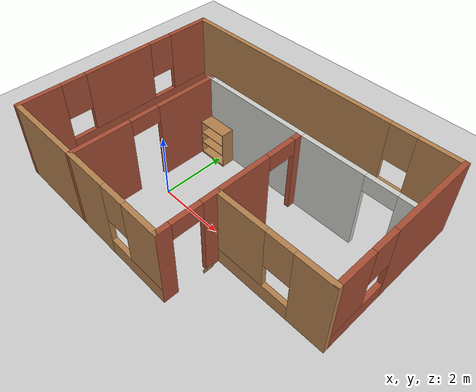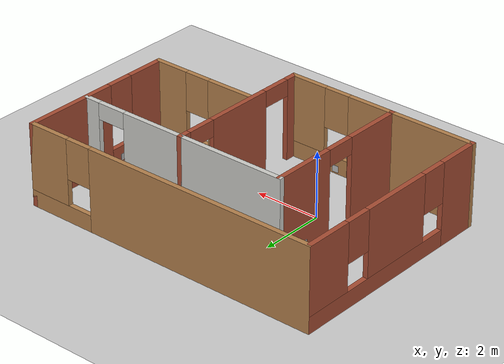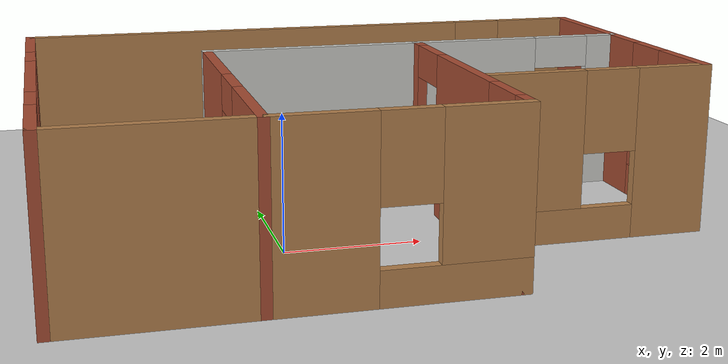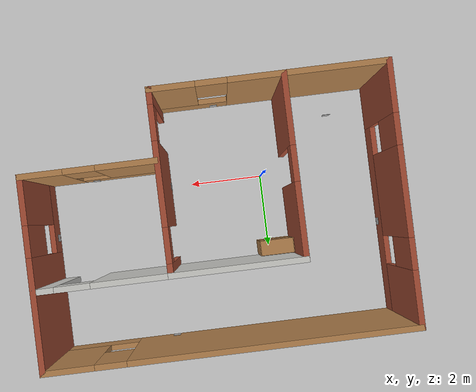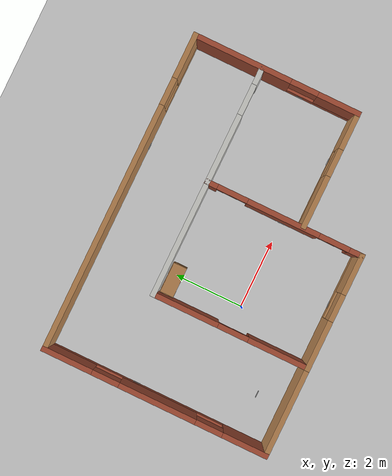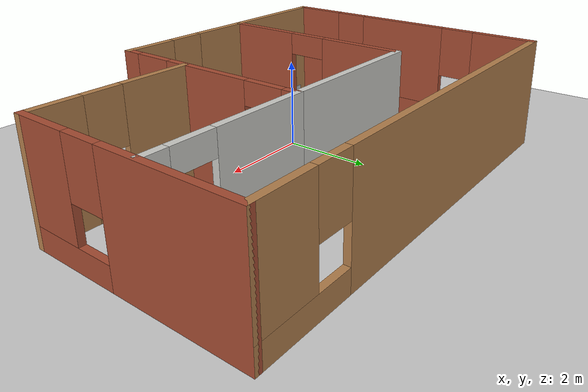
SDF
<sdf version="1.7">
 <world name="default">
  <model name="ground_plane">
   <static>1</static>
   <link name="link">
    <collision name="collision">
     <geometry><plane><normal>0 0 1</normal><size>100 100</size></plane></geometry>
     <surface><friction><ode><mu>100</mu><mu2>50</mu2></ode></friction></surface>
    </collision>
    <visual name="visual">
     <cast_shadows>0</cast_shadows>
     <geometry><plane><normal>0 0 1</normal><size>100 100</size></plane></geometry>
     <material>
      <script><uri>file://media/materials/scripts/gazebo.material</uri><name>Gazebo/Grey</name></script>
     </material>
    </visual>
   </link>
  </model>
  <model name="simple_building">
   <pose>1.395 1.04 0 0 -0 0</pose>
   <link name="Wall_0">
    <pose>-0.4 -3.3 0 0 -0 0</pose>
    <visual name="Wall_0_Visual_0">
     <pose>-1.0108 0 1.25 0 -0 0</pose>
     <geometry><box><size>1.4784 0.15 2.5</size></box></geometry>
     <material>
      <script><uri>file://media/materials/scripts/gazebo.material</uri><name>Gazebo/Wood</name></script>
      <ambient>1 1 1 1</ambient>
     </material>
     <meta><layer>0</layer></meta>
    </visual>
    <collision name="Wall_0_Collision_0">
     <geometry><box><size>1.4784 0.15 2.5</size></box></geometry>
     <pose>-1.0108 0 1.25 0 -0 0</pose>
    </collision>
    <visual name="Wall_0_Visual_1">
     <pose>0.739199 0 0.25 0 -0 0</pose>
     <geometry><box><size>2.0216 0.15 0.5</size></box></geometry>
     <material>
      <script><uri>file://media/materials/scripts/gazebo.material</uri><name>Gazebo/Wood</name></script>
      <ambient>1 1 1 1</ambient>
     </material>
     <meta><layer>0</layer></meta>
    </visual>
    <collision name="Wall_0_Collision_1">
     <geometry><box><size>2.0216 0.15 0.5</size></box></geometry>
     <pose>0.739199 0 0.25 0 -0 0</pose>
    </collision>
    <visual name="Wall_0_Visual_2">
     <pose>1.1392 0 1.5 0 -0 0</pose>
     <geometry><box><size>1.2216 0.15 2</size></box></geometry>
     <material>
      <script><uri>file://media/materials/scripts/gazebo.material</uri><name>Gazebo/Wood</name></script>
      <ambient>1 1 1 1</ambient>
     </material>
     <meta><layer>0</layer></meta>
    </visual>
    <collision name="Wall_0_Collision_2">
     <geometry><box><size>1.2216 0.15 2</size></box></geometry>
     <pose>1.1392 0 1.5 0 -0 0</pose>
    </collision>
    <visual name="Wall_0_Visual_3">
     <pose>0.128399 0 1.9 0 -0 0</pose>
     <geometry><box><size>0.8 0.15 1.2</size></box></geometry>
     <material>
      <script><uri>file://media/materials/scripts/gazebo.material</uri><name>Gazebo/Wood</name></script>
      <ambient>1 1 1 1</ambient>
     </material>
     <meta><layer>0</layer></meta>
    </visual>
    <collision name="Wall_0_Collision_3">
     <geometry><box><size>0.8 0.15 1.2</size></box></geometry>
     <pose>0.128399 0 1.9 0 -0 0</pose>
    </collision>
   </link>
   <link name="Wall_13">
    <pose>-4.675 0 0 0 -0 1.5708</pose>
    <visual name="Wall_13_Visual_0">
     <pose>-2.69026 0 1.25 0 -0 0</pose>
     <geometry><box><size>1.36949 0.15 2.5</size></box></geometry>
     <material>
      <script><uri>file://media/materials/scripts/gazebo.material</uri><name>Gazebo/Bricks</name></script>
      <ambient>1 1 1 1</ambient>
     </material>
     <meta><layer>0</layer></meta>
    </visual>
    <collision name="Wall_13_Collision_0">
     <geometry><box><size>1.36949 0.15 2.5</size></box></geometry>
     <pose>-2.69026 0 1.25 0 -0 0</pose>
    </collision>
    <visual name="Wall_13_Visual_1">
     <pose>0.684742 0 0.25 0 -0 0</pose>
     <geometry><box><size>5.38051 0.15 0.5</size></box></geometry>
     <material>
      <script><uri>file://media/materials/scripts/gazebo.material</uri><name>Gazebo/Bricks</name></script>
      <ambient>1 1 1 1</ambient>
     </material>
     <meta><layer>0</layer></meta>
    </visual>
    <collision name="Wall_13_Collision_1">
     <geometry><box><size>5.38051 0.15 0.5</size></box></geometry>
     <pose>0.684742 0 0.25 0 -0 0</pose>
    </collision>
    <visual name="Wall_13_Visual_2">
     <pose>-0.062704 0 1.5 0 -0 0</pose>
     <geometry><box><size>2.28562 0.15 2</size></box></geometry>
     <material>
      <script><uri>file://media/materials/scripts/gazebo.material</uri><name>Gazebo/Bricks</name></script>
      <ambient>1 1 1 1</ambient>
     </material>
     <meta><layer>0</layer></meta>
    </visual>
    <collision name="Wall_13_Collision_2">
     <geometry><box><size>2.28562 0.15 2</size></box></geometry>
     <pose>-0.062704 0 1.5 0 -0 0</pose>
    </collision>
    <visual name="Wall_13_Visual_3">
     <pose>2.62755 0 1.5 0 -0 0</pose>
     <geometry><box><size>1.49489 0.15 2</size></box></geometry>
     <material>
      <script><uri>file://media/materials/scripts/gazebo.material</uri><name>Gazebo/Bricks</name></script>
      <ambient>1 1 1 1</ambient>
     </material>
     <meta><layer>0</layer></meta>
    </visual>
    <collision name="Wall_13_Collision_3">
     <geometry><box><size>1.49489 0.15 2</size></box></geometry>
     <pose>2.62755 0 1.5 0 -0 0</pose>
    </collision>
    <visual name="Wall_13_Visual_4">
     <pose>-1.60552 0 1.9 0 -0 0</pose>
     <geometry><box><size>0.8 0.15 1.2</size></box></geometry>
     <material>
      <script><uri>file://media/materials/scripts/gazebo.material</uri><name>Gazebo/Bricks</name></script>
      <ambient>1 1 1 1</ambient>
     </material>
     <meta><layer>0</layer></meta>
    </visual>
    <collision name="Wall_13_Collision_4">
     <geometry><box><size>0.8 0.15 1.2</size></box></geometry>
     <pose>-1.60552 0 1.9 0 -0 0</pose>
    </collision>
    <visual name="Wall_13_Visual_5">
     <pose>1.48011 0 1.9 0 -0 0</pose>
     <geometry><box><size>0.8 0.15 1.2</size></box></geometry>
     <material>
      <script><uri>file://media/materials/scripts/gazebo.material</uri><name>Gazebo/Bricks</name></script>
      <ambient>1 1 1 1</ambient>
     </material>
     <meta><layer>0</layer></meta>
    </visual>
    <collision name="Wall_13_Collision_5">
     <geometry><box><size>0.8 0.15 1.2</size></box></geometry>
     <pose>1.48011 0 1.9 0 -0 0</pose>
    </collision>
   </link>
   <link name="Wall_14">
    <pose>0 3.3 0 0 -0 0</pose>
    <visual name="Wall_14_Visual_0">
     <pose>-1.07489 0 1.25 0 -0 0</pose>
     <geometry><box><size>7.35022 0.15 2.5</size></box></geometry>
     <material>
      <script><uri>file://media/materials/scripts/gazebo.material</uri><name>Gazebo/Wood</name></script>
      <ambient>1 1 1 1</ambient>
     </material>
     <meta><layer>0</layer></meta>
    </visual>
    <collision name="Wall_14_Collision_0">
     <geometry><box><size>7.35022 0.15 2.5</size></box></geometry>
     <pose>-1.07489 0 1.25 0 -0 0</pose>
    </collision>
    <visual name="Wall_14_Visual_1">
     <pose>3.67511 0 0.25 0 -0 0</pose>
     <geometry><box><size>2.14978 0.15 0.5</size></box></geometry>
     <material>
      <script><uri>file://media/materials/scripts/gazebo.material</uri><name>Gazebo/Wood</name></script>
      <ambient>1 1 1 1</ambient>
     </material>
     <meta><layer>0</layer></meta>
    </visual>
    <collision name="Wall_14_Collision_1">
     <geometry><box><size>2.14978 0.15 0.5</size></box></geometry>
     <pose>3.67511 0 0.25 0 -0 0</pose>
    </collision>
    <visual name="Wall_14_Visual_2">
     <pose>4.07511 0 1.5 0 -0 0</pose>
     <geometry><box><size>1.34978 0.15 2</size></box></geometry>
     <material>
      <script><uri>file://media/materials/scripts/gazebo.material</uri><name>Gazebo/Wood</name></script>
      <ambient>1 1 1 1</ambient>
     </material>
     <meta><layer>0</layer></meta>
    </visual>
    <collision name="Wall_14_Collision_2">
     <geometry><box><size>1.34978 0.15 2</size></box></geometry>
     <pose>4.07511 0 1.5 0 -0 0</pose>
    </collision>
    <visual name="Wall_14_Visual_3">
     <pose>3.00022 0 1.9 0 -0 0</pose>
     <geometry><box><size>0.8 0.15 1.2</size></box></geometry>
     <material>
      <script><uri>file://media/materials/scripts/gazebo.material</uri><name>Gazebo/Wood</name></script>
      <ambient>1 1 1 1</ambient>
     </material>
     <meta><layer>0</layer></meta>
    </visual>
    <collision name="Wall_14_Collision_3">
     <geometry><box><size>0.8 0.15 1.2</size></box></geometry>
     <pose>3.00022 0 1.9 0 -0 0</pose>
    </collision>
   </link>
   <link name="Wall_15">
    <pose>4.675 0.875 0 0 -0 -1.5708</pose>
    <visual name="Wall_15_Visual_0">
     <pose>-1.03435 0 1.25 0 -0 0</pose>
     <geometry><box><size>2.9313 0.15 2.5</size></box></geometry>
     <material>
      <script><uri>file://media/materials/scripts/gazebo.material</uri><name>Gazebo/Bricks</name></script>
      <ambient>1 1 1 1</ambient>
     </material>
     <meta><layer>0</layer></meta>
    </visual>
    <collision name="Wall_15_Collision_0">
     <geometry><box><size>2.9313 0.15 2.5</size></box></geometry>
     <pose>-1.03435 0 1.25 0 -0 0</pose>
    </collision>
    <visual name="Wall_15_Visual_1">
     <pose>1.46565 0 0.25 0 -0 0</pose>
     <geometry><box><size>2.0687 0.15 0.5</size></box></geometry>
     <material>
      <script><uri>file://media/materials/scripts/gazebo.material</uri><name>Gazebo/Bricks</name></script>
      <ambient>1 1 1 1</ambient>
     </material>
     <meta><layer>0</layer></meta>
    </visual>
    <collision name="Wall_15_Collision_1">
     <geometry><box><size>2.0687 0.15 0.5</size></box></geometry>
     <pose>1.46565 0 0.25 0 -0 0</pose>
    </collision>
    <visual name="Wall_15_Visual_2">
     <pose>1.86565 0 1.5 0 -0 0</pose>
     <geometry><box><size>1.2687 0.15 2</size></box></geometry>
     <material>
      <script><uri>file://media/materials/scripts/gazebo.material</uri><name>Gazebo/Bricks</name></script>
      <ambient>1 1 1 1</ambient>
     </material>
     <meta><layer>0</layer></meta>
    </visual>
    <collision name="Wall_15_Collision_2">
     <geometry><box><size>1.2687 0.15 2</size></box></geometry>
     <pose>1.86565 0 1.5 0 -0 0</pose>
    </collision>
    <visual name="Wall_15_Visual_3">
     <pose>0.831303 0 1.9 0 -0 0</pose>
     <geometry><box><size>0.8 0.15 1.2</size></box></geometry>
     <material>
      <script><uri>file://media/materials/scripts/gazebo.material</uri><name>Gazebo/Bricks</name></script>
      <ambient>1 1 1 1</ambient>
     </material>
     <meta><layer>0</layer></meta>
    </visual>
    <collision name="Wall_15_Collision_3">
     <geometry><box><size>0.8 0.15 1.2</size></box></geometry>
     <pose>0.831303 0 1.9 0 -0 0</pose>
    </collision>
   </link>
   <link name="Wall_18">
    <pose>3 -1.55 0 0 -0 3.14159</pose>
    <visual name="Wall_18_Visual_0">
     <pose>-1.18151 0 1.25 0 -0 0</pose>
     <geometry><box><size>1.13698 0.15 2.5</size></box></geometry>
     <material>
      <script><uri>file://media/materials/scripts/gazebo.material</uri><name>Gazebo/Wood</name></script>
      <ambient>0.435294 0.796078 0.67451 1</ambient>
     </material>
     <meta><layer>0</layer></meta>
    </visual>
    <collision name="Wall_18_Collision_0">
     <geometry><box><size>1.13698 0.15 2.5</size></box></geometry>
     <pose>-1.18151 0 1.25 0 -0 0</pose>
    </collision>
    <visual name="Wall_18_Visual_1">
     <pose>0.568488 0 0.25 0 -0 0</pose>
     <geometry><box><size>2.36302 0.15 0.5</size></box></geometry>
     <material>
      <script><uri>file://media/materials/scripts/gazebo.material</uri><name>Gazebo/Wood</name></script>
      <ambient>0.435294 0.796078 0.67451 1</ambient>
     </material>
     <meta><layer>0</layer></meta>
    </visual>
    <collision name="Wall_18_Collision_1">
     <geometry><box><size>2.36302 0.15 0.5</size></box></geometry>
     <pose>0.568488 0 0.25 0 -0 0</pose>
    </collision>
    <visual name="Wall_18_Visual_2">
     <pose>0.968488 0 1.5 0 -0 0</pose>
     <geometry><box><size>1.56303 0.15 2</size></box></geometry>
     <material>
      <script><uri>file://media/materials/scripts/gazebo.material</uri><name>Gazebo/Wood</name></script>
      <ambient>0.435294 0.796078 0.67451 1</ambient>
     </material>
     <meta><layer>0</layer></meta>
    </visual>
    <collision name="Wall_18_Collision_2">
     <geometry><box><size>1.56303 0.15 2</size></box></geometry>
     <pose>0.968488 0 1.5 0 -0 0</pose>
    </collision>
    <visual name="Wall_18_Visual_3">
     <pose>-0.213025 0 1.9 0 -0 0</pose>
     <geometry><box><size>0.8 0.15 1.2</size></box></geometry>
     <material>
      <script><uri>file://media/materials/scripts/gazebo.material</uri><name>Gazebo/Wood</name></script>
      <ambient>0.435294 0.796078 0.67451 1</ambient>
     </material>
     <meta><layer>0</layer></meta>
    </visual>
    <collision name="Wall_18_Collision_3">
     <geometry><box><size>0.8 0.15 1.2</size></box></geometry>
     <pose>-0.213025 0 1.9 0 -0 0</pose>
    </collision>
   </link>
   <link name="Wall_20">
    <pose>2.95 1.3 0 0 -0 0</pose>
    <visual name="Wall_20_Visual_0">
     <pose>-0.715786 0 1.25 0 -0 0</pose>
     <geometry><box><size>2.06843 0.15 2.5</size></box></geometry>
     <material>
      <script><uri>file://media/materials/scripts/gazebo.material</uri><name>Gazebo/CeilingTiled</name></script>
      <ambient>1 1 1 1</ambient>
     </material>
     <meta><layer>0</layer></meta>
    </visual>
    <collision name="Wall_20_Collision_0">
     <geometry><box><size>2.06843 0.15 2.5</size></box></geometry>
     <pose>-0.715786 0 1.25 0 -0 0</pose>
    </collision>
    <visual name="Wall_20_Visual_1">
     <pose>1.48421 0 1.25 0 -0 0</pose>
     <geometry><box><size>0.531571 0.15 2.5</size></box></geometry>
     <material>
      <script><uri>file://media/materials/scripts/gazebo.material</uri><name>Gazebo/CeilingTiled</name></script>
      <ambient>1 1 1 1</ambient>
     </material>
     <meta><layer>0</layer></meta>
    </visual>
    <collision name="Wall_20_Collision_1">
     <geometry><box><size>0.531571 0.15 2.5</size></box></geometry>
     <pose>1.48421 0 1.25 0 -0 0</pose>
    </collision>
    <visual name="Wall_20_Visual_2">
     <pose>0.768429 0 2.25 0 -0 0</pose>
     <geometry><box><size>0.9 0.15 0.5</size></box></geometry>
     <material>
      <script><uri>file://media/materials/scripts/gazebo.material</uri><name>Gazebo/CeilingTiled</name></script>
      <ambient>1 1 1 1</ambient>
     </material>
     <meta><layer>0</layer></meta>
    </visual>
    <collision name="Wall_20_Collision_2">
     <geometry><box><size>0.9 0.15 0.5</size></box></geometry>
     <pose>0.768429 0 2.25 0 -0 0</pose>
    </collision>
   </link>
   <link name="Wall_5">
    <pose>1.275 -1 0 0 -0 1.5708</pose>
    <visual name="Wall_5_Visual_0">
     <pose>-2.15416 0 1.25 0 -0 0</pose>
     <geometry><box><size>0.441678 0.15 2.5</size></box></geometry>
     <material>
      <script><uri>file://media/materials/scripts/gazebo.material</uri><name>Gazebo/Bricks</name></script>
      <ambient>1 1 1 1</ambient>
     </material>
     <meta><layer>0</layer></meta>
    </visual>
    <collision name="Wall_5_Collision_0">
     <geometry><box><size>0.441678 0.15 2.5</size></box></geometry>
     <pose>-2.15416 0 1.25 0 -0 0</pose>
    </collision>
    <visual name="Wall_5_Visual_1">
     <pose>0.032889 0 1.25 0 -0 0</pose>
     <geometry><box><size>2.13242 0.15 2.5</size></box></geometry>
     <material>
      <script><uri>file://media/materials/scripts/gazebo.material</uri><name>Gazebo/Bricks</name></script>
      <ambient>1 1 1 1</ambient>
     </material>
     <meta><layer>0</layer></meta>
    </visual>
    <collision name="Wall_5_Collision_1">
     <geometry><box><size>2.13242 0.15 2.5</size></box></geometry>
     <pose>0.032889 0 1.25 0 -0 0</pose>
    </collision>
    <visual name="Wall_5_Visual_2">
     <pose>2.18705 0 1.25 0 -0 0</pose>
     <geometry><box><size>0.375899 0.15 2.5</size></box></geometry>
     <material>
      <script><uri>file://media/materials/scripts/gazebo.material</uri><name>Gazebo/Bricks</name></script>
      <ambient>1 1 1 1</ambient>
     </material>
     <meta><layer>0</layer></meta>
    </visual>
    <collision name="Wall_5_Collision_2">
     <geometry><box><size>0.375899 0.15 2.5</size></box></geometry>
     <pose>2.18705 0 1.25 0 -0 0</pose>
    </collision>
    <visual name="Wall_5_Visual_3">
     <pose>-1.48332 0 2.25 0 -0 0</pose>
     <geometry><box><size>0.9 0.15 0.5</size></box></geometry>
     <material>
      <script><uri>file://media/materials/scripts/gazebo.material</uri><name>Gazebo/Bricks</name></script>
      <ambient>1 1 1 1</ambient>
     </material>
     <meta><layer>0</layer></meta>
    </visual>
    <collision name="Wall_5_Collision_3">
     <geometry><box><size>0.9 0.15 0.5</size></box></geometry>
     <pose>-1.48332 0 2.25 0 -0 0</pose>
    </collision>
    <visual name="Wall_5_Visual_4">
     <pose>1.5491 0 2.25 0 -0 0</pose>
     <geometry><box><size>0.9 0.15 0.5</size></box></geometry>
     <material>
      <script><uri>file://media/materials/scripts/gazebo.material</uri><name>Gazebo/Bricks</name></script>
      <ambient>1 1 1 1</ambient>
     </material>
     <meta><layer>0</layer></meta>
    </visual>
    <collision name="Wall_5_Collision_4">
     <geometry><box><size>0.9 0.15 0.5</size></box></geometry>
     <pose>1.5491 0 2.25 0 -0 0</pose>
    </collision>
   </link>
   <link name="Wall_7">
    <collision name="Wall_7_Collision">
     <geometry><box><size>3.5 0.15 2.5</size></box></geometry>
     <pose>0 0 1.25 0 -0 0</pose>
    </collision>
    <visual name="Wall_7_Visual">
     <pose>0 0 1.25 0 -0 0</pose>
     <geometry><box><size>3.5 0.15 2.5</size></box></geometry>
     <material>
      <script><uri>file://media/materials/scripts/gazebo.material</uri><name>Gazebo/CeilingTiled</name></script>
      <ambient>1 1 1 1</ambient>
     </material>
     <meta><layer>0</layer></meta>
    </visual>
    <pose>-0.4 1.3 0 0 -0 3.14159</pose>
   </link>
   <link name="Wall_8">
    <pose>-2.075 -1 0 0 -0 -1.5708</pose>
    <visual name="Wall_8_Visual_0">
     <pose>-1.37574 0 1.25 0 -0 0</pose>
     <geometry><box><size>1.99851 0.15 2.5</size></box></geometry>
     <material>
      <script><uri>file://media/materials/scripts/gazebo.material</uri><name>Gazebo/Bricks</name></script>
      <ambient>1 1 1 1</ambient>
     </material>
     <meta><layer>0</layer></meta>
    </visual>
    <collision name="Wall_8_Collision_0">
     <geometry><box><size>1.99851 0.15 2.5</size></box></geometry>
     <pose>-1.37574 0 1.25 0 -0 0</pose>
    </collision>
    <visual name="Wall_8_Visual_1">
     <pose>1.44926 0 1.25 0 -0 0</pose>
     <geometry><box><size>1.85149 0.15 2.5</size></box></geometry>
     <material>
      <script><uri>file://media/materials/scripts/gazebo.material</uri><name>Gazebo/Bricks</name></script>
      <ambient>1 1 1 1</ambient>
     </material>
     <meta><layer>0</layer></meta>
    </visual>
    <collision name="Wall_8_Collision_1">
     <geometry><box><size>1.85149 0.15 2.5</size></box></geometry>
     <pose>1.44926 0 1.25 0 -0 0</pose>
    </collision>
    <visual name="Wall_8_Visual_2">
     <pose>0.073511 0 2.25 0 -0 0</pose>
     <geometry><box><size>0.9 0.15 0.5</size></box></geometry>
     <material>
      <script><uri>file://media/materials/scripts/gazebo.material</uri><name>Gazebo/Bricks</name></script>
      <ambient>1 1 1 1</ambient>
     </material>
     <meta><layer>0</layer></meta>
    </visual>
    <collision name="Wall_8_Collision_2">
     <geometry><box><size>0.9 0.15 0.5</size></box></geometry>
     <pose>0.073511 0 2.25 0 -0 0</pose>
    </collision>
   </link>
   <link name="Wall_9">
    <collision name="Wall_9_Collision">
     <geometry><box><size>2.75 0.15 2.5</size></box></geometry>
     <pose>0 0 1.25 0 -0 0</pose>
    </collision>
    <visual name="Wall_9_Visual">
     <pose>0 0 1.25 0 -0 0</pose>
     <geometry><box><size>2.75 0.15 2.5</size></box></geometry>
     <material>
      <script><uri>file://media/materials/scripts/gazebo.material</uri><name>Gazebo/Wood</name></script>
      <ambient>1 1 1 1</ambient>
     </material>
     <meta><layer>0</layer></meta>
    </visual>
    <pose>-3.375 -3.3 0 0 -0 3.14159</pose>
   </link>
   <static>1</static>
  </model>
  <model name="bookshelf">
   <static>1</static>
   <link name="link">
    <inertial><mass>1</mass></inertial>
    <collision name="back">
     <pose>0 0.005 0.6 0 -0 0</pose>
     <geometry><box><size>0.9 0.01 1.2</size></box></geometry>
    </collision>
    <visual name="visual1">
     <pose>0 0.005 0.6 0 -0 0</pose>
     <geometry><box><size>0.9 0.01 1.2</size></box></geometry>
     <material>
      <script><uri>file://media/materials/scripts/gazebo.material</uri><name>Gazebo/Wood</name></script>
     </material>
    </visual>
    <collision name="left_side">
     <pose>0.45 -0.195 0.6 0 -0 0</pose>
     <geometry><box><size>0.02 0.4 1.2</size></box></geometry>
    </collision>
    <visual name="visual2">
     <pose>0.45 -0.195 0.6 0 -0 0</pose>
     <geometry><box><size>0.02 0.4 1.2</size></box></geometry>
     <material>
      <script><uri>file://media/materials/scripts/gazebo.material</uri><name>Gazebo/Wood</name></script>
     </material>
    </visual>
    <collision name="right_side">
     <pose>-0.45 -0.195 0.6 0 -0 0</pose>
     <geometry><box><size>0.02 0.4 1.2</size></box></geometry>
    </collision>
    <visual name="visual3">
     <pose>-0.45 -0.195 0.6 0 -0 0</pose>
     <geometry><box><size>0.02 0.4 1.2</size></box></geometry>
     <material>
      <script><uri>file://media/materials/scripts/gazebo.material</uri><name>Gazebo/Wood</name></script>
     </material>
    </visual>
    <collision name="bottom">
     <pose>0 -0.195 0.03 0 -0 0</pose>
     <geometry><box><size>0.88 0.4 0.06</size></box></geometry>
    </collision>
    <visual name="visual4">
     <pose>0 -0.195 0.03 0 -0 0</pose>
     <geometry><box><size>0.88 0.4 0.06</size></box></geometry>
     <material>
      <script><uri>file://media/materials/scripts/gazebo.material</uri><name>Gazebo/Wood</name></script>
     </material>
    </visual>
    <collision name="top">
     <pose>0 -0.195 1.19 0 -0 0</pose>
     <geometry><box><size>0.88 0.4 0.02</size></box></geometry>
    </collision>
    <visual name="visual5">
     <pose>0 -0.195 1.19 0 -0 0</pose>
     <geometry><box><size>0.88 0.4 0.02</size></box></geometry>
     <material>
      <script><uri>file://media/materials/scripts/gazebo.material</uri><name>Gazebo/Wood</name></script>
     </material>
    </visual>
    <collision name="low_shelf">
     <pose>0 -0.195 0.43 0 -0 0</pose>
     <geometry><box><size>0.88 0.4 0.02</size></box></geometry>
    </collision>
    <visual name="visual6">
     <pose>0 -0.195 0.43 0 -0 0</pose>
     <geometry><box><size>0.88 0.4 0.02</size></box></geometry>
     <material>
      <script><uri>file://media/materials/scripts/gazebo.material</uri><name>Gazebo/Wood</name></script>
     </material>
    </visual>
    <collision name="high_shelf">
     <pose>0 -0.195 0.8 0 -0 0</pose>
     <geometry><box><size>0.88 0.4 0.02</size></box></geometry>
    </collision>
    <visual name="visual7">
     <pose>0 -0.195 0.8 0 -0 0</pose>
     <geometry><box><size>0.88 0.4 0.02</size></box></geometry>
     <material>
      <script><uri>file://media/materials/scripts/gazebo.material</uri><name>Gazebo/Wood</name></script>
     </material>
    </visual>
   </link>
   <pose>-0.131129 2.22267 0 0 -0 0</pose>
  </model>
  <model name="wooden_board">
   <link name="base">
    <pose>0 0 0.00523 0 -0 0</pose>
    <inertial>
     <mass>0.2765</mass>
     <inertia>
      <ixx>0.0025148</ixx>
      <ixy>0</ixy>
      <ixz>0</ixz>
      <iyy>0.00024037</iyy>
      <iyz>0</iyz>
      <izz>0.00275013</izz>
     </inertia>
    </inertial>
    <collision name="collision">
     <geometry><box><size>0.1016 0.3302 0.01046</size></box></geometry>
     <surface>
      <contact>
       <poissons_ratio>0.347</poissons_ratio>
       <elastic_modulus>8.8e+09</elastic_modulus>
       <ode><kp>100000</kp><kd>100</kd><max_vel>100</max_vel><min_depth>0.001</min_depth></ode>
      </contact>
      <friction>
       <torsional>
        <coefficient>1</coefficient>
        <use_patch_radius>0</use_patch_radius>
        <surface_radius>0.01</surface_radius>
       </torsional>
      </friction>
     </surface>
    </collision>
    <visual name="visual">
     <geometry><box><size>0.1016 0.3302 0.01046</size></box></geometry>
     <material>
      <script><uri>file://media/materials/scripts/gazebo.material</uri><name>Gazebo/Wood</name></script>
     </material>
    </visual>
    <visual name="tee_nut_1">
     <pose>0 -0.116 0 0 -0 0</pose>
     <geometry><cylinder><radius>0.00635</radius><length>0.0105646</length></cylinder></geometry>
     <material>
      <script><uri>file://media/materials/scripts/gazebo.material</uri><name>Gazebo/Grey</name></script>
     </material>
    </visual>
    <visual name="tee_nut_2">
     <pose>0 -0.038 0 0 -0 0</pose>
     <geometry><cylinder><radius>0.00635</radius><length>0.0105646</length></cylinder></geometry>
     <material>
      <script><uri>file://media/materials/scripts/gazebo.material</uri><name>Gazebo/Grey</name></script>
     </material>
    </visual>
    <visual name="tee_nut_3">
     <pose>0 0.038 0 0 -0 0</pose>
     <geometry><cylinder><radius>0.00635</radius><length>0.0105646</length></cylinder></geometry>
     <material>
      <script><uri>file://media/materials/scripts/gazebo.material</uri><name>Gazebo/Grey</name></script>
     </material>
    </visual>
    <visual name="tee_nut_4">
     <pose>0 0.116 0 0 -0 0</pose>
     <geometry><cylinder><radius>0.00635</radius><length>0.0105646</length></cylinder></geometry>
     <material>
      <script><uri>file://media/materials/scripts/gazebo.material</uri><name>Gazebo/Grey</name></script>
     </material>
    </visual>
   </link>
   <pose>2.76633 -0.94401 0.050813 -3.14159 -1.32889 3.14153</pose>
  </model>
  <model name="Apriltag36_11_00000">
   <link name="main">
    <visual name="main_Visual">
     <geometry><box><size>0.2 0.2 0.01</size></box></geometry>
     <material>
      <script>
       <uri>model://Apriltag36_11_00000/materials/scripts</uri>
       <uri>model://Apriltag36_11_00000/materials/textures</uri>
       <name>Apriltag36_11_00000</name>
      </script>
     </material>
    </visual>
   </link>
   <static>1</static>
   <pose>2.59062 0 0.15 -3.14159 -1.57079 -3.14159</pose>
  </model>
  <model name="Apriltag36_11_00001">
   <link name="main">
    <visual name="main_Visual">
     <geometry><box><size>0.2 0.2 0.01</size></box></geometry>
     <material>
      <script>
       <uri>model://Apriltag36_11_00001/materials/scripts</uri>
       <uri>model://Apriltag36_11_00001/materials/textures</uri>
       <name>Apriltag36_11_00001</name>
      </script>
     </material>
    </visual>
   </link>
   <static>1</static>
   <pose>-3.19886 1.71254 0.15 0 1.55874 0</pose>
  </model>
  <model name="Apriltag36_11_00002">
   <link name="main">
    <visual name="main_Visual">
     <geometry><box><size>0.2 0.2 0.01</size></box></geometry>
     <material>
      <script>
       <uri>model://Apriltag36_11_00002/materials/scripts</uri>
       <uri>model://Apriltag36_11_00002/materials/textures</uri>
       <name>Apriltag36_11_00002</name>
      </script>
     </material>
    </visual>
   </link>
   <static>1</static>
   <pose>-2.00652 -1.44626 0.547782 -1.57451 0 0</pose>
  </model>
  <model name="Apriltag36_11_00003">
   <link name="main">
    <visual name="main_Visual">
     <geometry><box><size>0.2 0.2 0.01</size></box></geometry>
     <material>
      <script>
       <uri>model://Apriltag36_11_00003/materials/scripts</uri>
       <uri>model://Apriltag36_11_00003/materials/textures</uri>
       <name>Apriltag36_11_00003</name>
      </script>
     </material>
    </visual>
   </link>
   <static>1</static>
   <pose>2.93962 4.25956 0.149952 1.56156 -0 0</pose>
  </model>
  <model name="Apriltag36_11_00004">
   <link name="main">
    <visual name="main_Visual">
     <geometry><box><size>0.2 0.2 0.01</size></box></geometry>
     <material>
      <script>
       <uri>model://Apriltag36_11_00004/materials/scripts</uri>
       <uri>model://Apriltag36_11_00004/materials/textures</uri>
       <name>Apriltag36_11_00004</name>
      </script>
     </material>
    </visual>
   </link>
   <static>1</static>
   <pose>5.99383 1.07881 0.15 0 -1.55822 0</pose>
  </model>
  <model name="Apriltag36_11_00005">
   <link name="main">
    <visual name="main_Visual">
     <geometry><box><size>0.2 0.2 0.01</size></box></geometry>
     <material>
      <script>
       <uri>model://Apriltag36_11_00005/materials/scripts</uri>
       <uri>model://Apriltag36_11_00005/materials/textures</uri>
       <name>Apriltag36_11_00005</name>
      </script>
     </material>
    </visual>
   </link>
   <static>1</static>
   <pose>4.71669 -0.428562 0.146861 -1.49937 0 0</pose>
  </model>
  <model name="Apriltag36_11_00006">
   <link name="main">
    <visual name="main_Visual">
     <geometry><box><size>0.2 0.2 0.01</size></box></geometry>
     <material>
      <script>
       <uri>model://Apriltag36_11_00006/materials/scripts</uri>
       <uri>model://Apriltag36_11_00006/materials/textures</uri>
       <name>Apriltag36_11_00006</name>
      </script>
     </material>
    </visual>
   </link>
   <static>1</static>
   <pose>1.10852 -2.18148 0.149846 -1.55491 0 0</pose>
  </model>
  <model name="Apriltag36_11_00007">
   <link name="main">
    <visual name="main_Visual">
     <geometry><box><size>0.2 0.2 0.01</size></box></geometry>
     <material>
      <script>
       <uri>model://Apriltag36_11_00007/materials/scripts</uri>
       <uri>model://Apriltag36_11_00007/materials/textures</uri>
       <name>Apriltag36_11_00007</name>
      </script>
     </material>
    </visual>
   </link>
   <static>1</static>
   <pose>-0.759512 1.42336 0.150083 3.14159 -1.56823 3.14159</pose>
  </model>
 </world>
</sdf>
